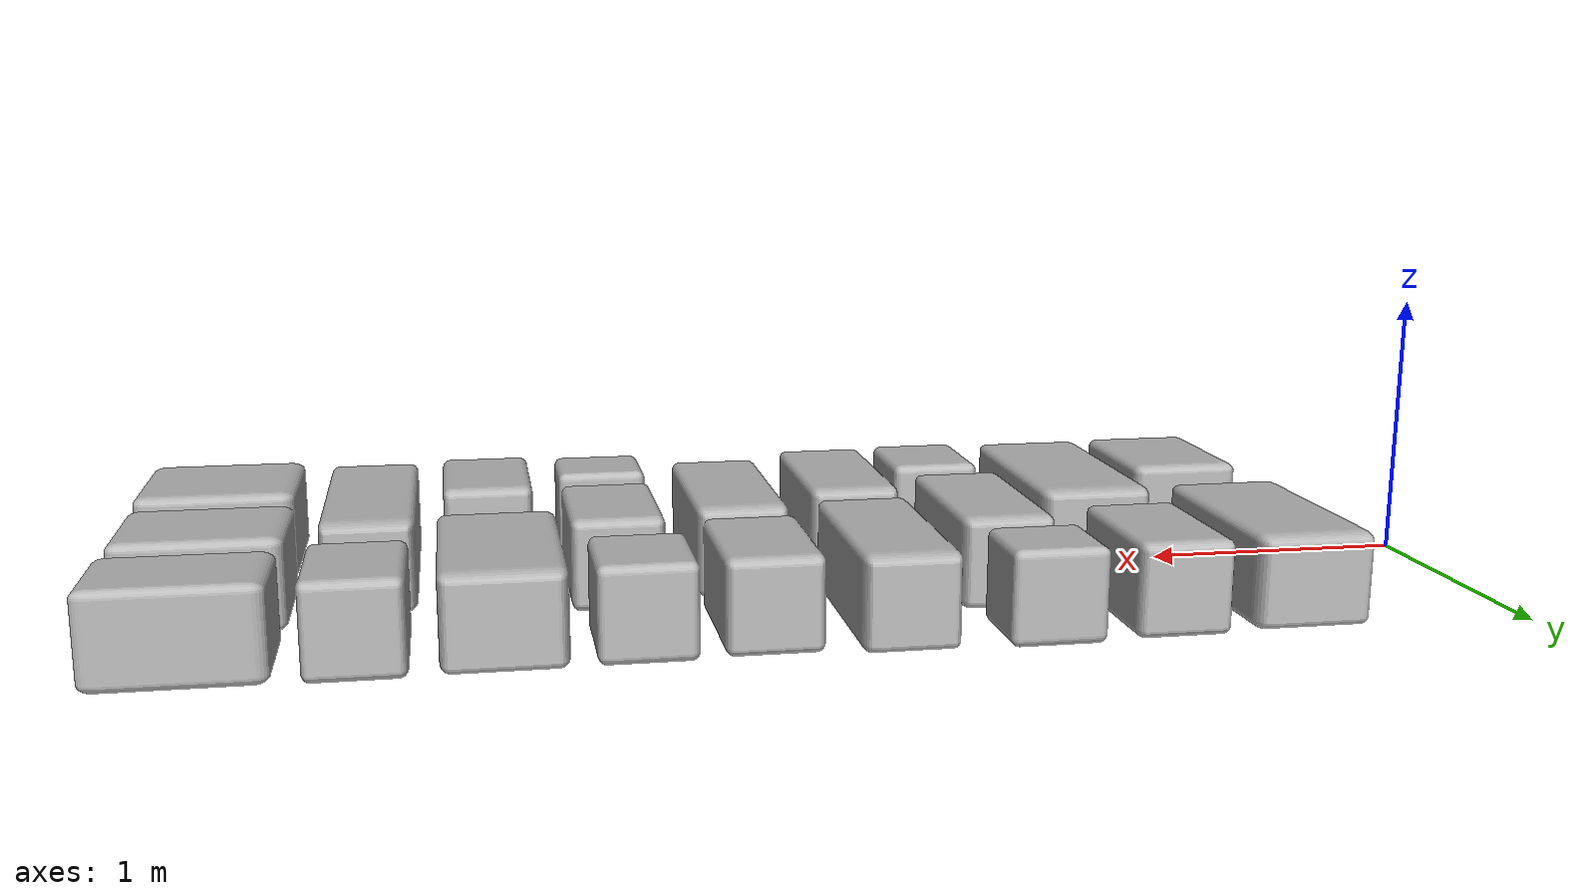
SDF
<?xml version="1.0" ?>
<sdf version="1.5">
  <model name="stepping_stone">
    <static>true</static>
    <pose>0 0 -0.4 0 0 1.57</pose>
    <link name="link">
      <collision name="stepping_stoneC">
        <geometry>
          <mesh>
            <uri>model://stepping_stone/stepping_stone.dae</uri>
            <scale>1.0 1.0 1.0</scale>
          </mesh>
        </geometry>
      </collision>
      <visual name="stepping_stoneV">
        <cast_shadows>true</cast_shadows>
        <geometry>
          <mesh>
            <uri>model://stepping_stone/stepping_stone.dae</uri>
            <scale>1.0 1.0 1.0</scale>
          </mesh>
        </geometry>
      </visual>
    </link>
  </model>
</sdf>
